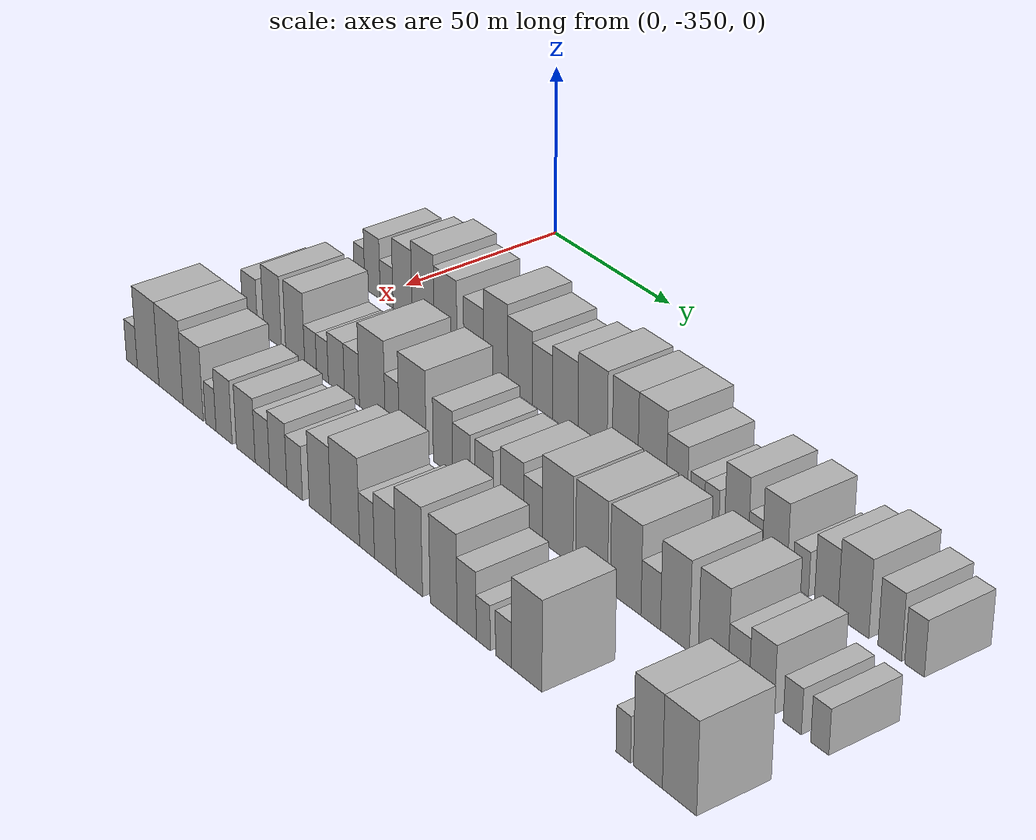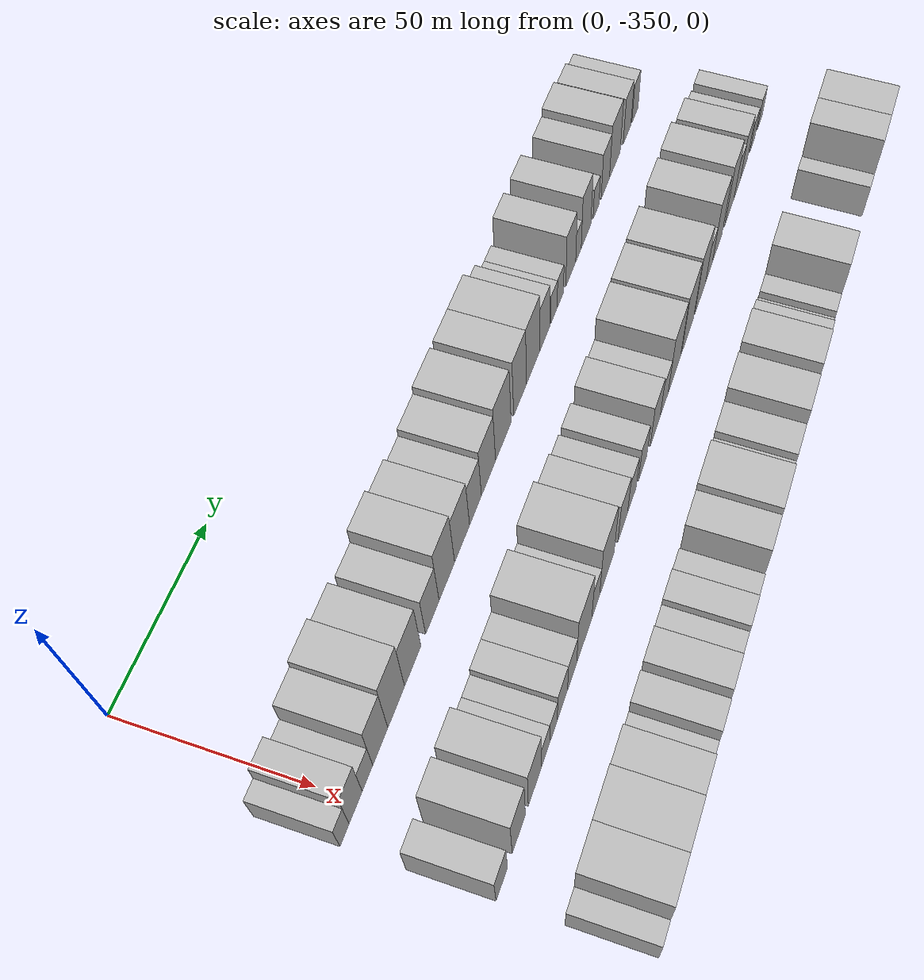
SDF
<sdf version="1.6">
 <world name="default">
  <model name="building_1">
   <static>1</static>
   <pose>50.0000 -357.4880 0 0.000000 0.000000 0.000000</pose>
   <link name="link">
    <pose>0 0 6.00 0 0 0</pose>
    <collision name="collision"><geometry><box><size>20.0000 5.0240 12.0000</size></box></geometry></collision>
    <visual name="visual">
     <cast_shadows>0</cast_shadows>
     <geometry><box><size>20.0000 5.0240 12.0000</size></box></geometry>
     <material>
      <script>
       <uri>model://HANNAS_wall/materials/scripts</uri>
       <uri>model://HANNAS_wall/materials/textures</uri>
       <name>vrc/HANNAS_wall</name>
      </script>
     </material>
    </visual>
   </link>
  </model>
  <model name="building_2">
   <static>1</static>
   <pose>50.0000 -351.3246 0 0.000000 0.000000 0.000000</pose>
   <link name="link">
    <pose>0 0 9.00 0 0 0</pose>
    <collision name="collision"><geometry><box><size>20.0000 7.3028 18.0000</size></box></geometry></collision>
    <visual name="visual">
     <cast_shadows>0</cast_shadows>
     <geometry><box><size>20.0000 7.3028 18.0000</size></box></geometry>
     <material>
      <script>
       <uri>model://HANNAS_wall/materials/scripts</uri>
       <uri>model://HANNAS_wall/materials/textures</uri>
       <name>vrc/HANNAS_wall</name>
      </script>
     </material>
    </visual>
   </link>
  </model>
  <model name="building_3">
   <static>1</static>
   <pose>50.0000 -344.6761 0 0.000000 0.000000 0.000000</pose>
   <link name="link">
    <pose>0 0 6.00 0 0 0</pose>
    <collision name="collision"><geometry><box><size>20.0000 5.9943 12.0000</size></box></geometry></collision>
    <visual name="visual">
     <cast_shadows>0</cast_shadows>
     <geometry><box><size>20.0000 5.9943 12.0000</size></box></geometry>
     <material>
      <script>
       <uri>model://HANNAS_wall/materials/scripts</uri>
       <uri>model://HANNAS_wall/materials/textures</uri>
       <name>vrc/HANNAS_wall</name>
      </script>
     </material>
    </visual>
   </link>
  </model>
  <model name="building_4">
   <static>1</static>
   <pose>50.0000 -337.2562 0 0.000000 0.000000 0.000000</pose>
   <link name="link">
    <pose>0 0 10.50 0 0 0</pose>
    <collision name="collision"><geometry><box><size>20.0000 8.8454 21.0000</size></box></geometry></collision>
    <visual name="visual">
     <cast_shadows>0</cast_shadows>
     <geometry><box><size>20.0000 8.8454 21.0000</size></box></geometry>
     <material>
      <script>
       <uri>model://HANNAS_wall/materials/scripts</uri>
       <uri>model://HANNAS_wall/materials/textures</uri>
       <name>vrc/HANNAS_wall</name>
      </script>
     </material>
    </visual>
   </link>
  </model>
  <model name="building_5">
   <static>1</static>
   <pose>50.0000 -327.7756 0 0.000000 0.000000 0.000000</pose>
   <link name="link">
    <pose>0 0 12.00 0 0 0</pose>
    <collision name="collision"><geometry><box><size>20.0000 10.1157 24.0000</size></box></geometry></collision>
    <visual name="visual">
     <cast_shadows>0</cast_shadows>
     <geometry><box><size>20.0000 10.1157 24.0000</size></box></geometry>
     <material>
      <script>
       <uri>model://HANNAS_wall/materials/scripts</uri>
       <uri>model://HANNAS_wall/materials/textures</uri>
       <name>vrc/HANNAS_wall</name>
      </script>
     </material>
    </visual>
   </link>
  </model>
  <model name="building_6">
   <static>1</static>
   <pose>50.0000 -317.6437 0 0.000000 0.000000 0.000000</pose>
   <link name="link">
    <pose>0 0 10.50 0 0 0</pose>
    <collision name="collision"><geometry><box><size>20.0000 10.1482 21.0000</size></box></geometry></collision>
    <visual name="visual">
     <cast_shadows>0</cast_shadows>
     <geometry><box><size>20.0000 10.1482 21.0000</size></box></geometry>
     <material>
      <script>
       <uri>model://HANNAS_wall/materials/scripts</uri>
       <uri>model://HANNAS_wall/materials/textures</uri>
       <name>vrc/HANNAS_wall</name>
      </script>
     </material>
    </visual>
   </link>
  </model>
  <model name="building_7">
   <static>1</static>
   <pose>50.0000 -305.1972 0 0.000000 0.000000 0.000000</pose>
   <link name="link">
    <pose>0 0 9.00 0 0 0</pose>
    <collision name="collision"><geometry><box><size>20.0000 8.7449 18.0000</size></box></geometry></collision>
    <visual name="visual">
     <cast_shadows>0</cast_shadows>
     <geometry><box><size>20.0000 8.7449 18.0000</size></box></geometry>
     <material>
      <script>
       <uri>model://HANNAS_wall/materials/scripts</uri>
       <uri>model://HANNAS_wall/materials/textures</uri>
       <name>vrc/HANNAS_wall</name>
      </script>
     </material>
    </visual>
   </link>
  </model>
  <model name="building_8">
   <static>1</static>
   <pose>50.0000 -295.6547 0 0.000000 0.000000 0.000000</pose>
   <link name="link">
    <pose>0 0 12.00 0 0 0</pose>
    <collision name="collision"><geometry><box><size>20.0000 10.3399 24.0000</size></box></geometry></collision>
    <visual name="visual">
     <cast_shadows>0</cast_shadows>
     <geometry><box><size>20.0000 10.3399 24.0000</size></box></geometry>
     <material>
      <script>
       <uri>model://HANNAS_wall/materials/scripts</uri>
       <uri>model://HANNAS_wall/materials/textures</uri>
       <name>vrc/HANNAS_wall</name>
      </script>
     </material>
    </visual>
   </link>
  </model>
  <model name="building_9">
   <static>1</static>
   <pose>50.0000 -285.3415 0 0.000000 0.000000 0.000000</pose>
   <link name="link">
    <pose>0 0 10.50 0 0 0</pose>
    <collision name="collision"><geometry><box><size>20.0000 10.2866 21.0000</size></box></geometry></collision>
    <visual name="visual">
     <cast_shadows>0</cast_shadows>
     <geometry><box><size>20.0000 10.2866 21.0000</size></box></geometry>
     <material>
      <script>
       <uri>model://HANNAS_wall/materials/scripts</uri>
       <uri>model://HANNAS_wall/materials/textures</uri>
       <name>vrc/HANNAS_wall</name>
      </script>
     </material>
    </visual>
   </link>
  </model>
  <model name="building_10">
   <static>1</static>
   <pose>50.0000 -275.9957 0 0.000000 0.000000 0.000000</pose>
   <link name="link">
    <pose>0 0 9.00 0 0 0</pose>
    <collision name="collision"><geometry><box><size>20.0000 8.4051 18.0000</size></box></geometry></collision>
    <visual name="visual">
     <cast_shadows>0</cast_shadows>
     <geometry><box><size>20.0000 8.4051 18.0000</size></box></geometry>
     <material>
      <script>
       <uri>model://HANNAS_wall/materials/scripts</uri>
       <uri>model://HANNAS_wall/materials/textures</uri>
       <name>vrc/HANNAS_wall</name>
      </script>
     </material>
    </visual>
   </link>
  </model>
  <model name="building_11">
   <static>1</static>
   <pose>50.0000 -266.6467 0 0.000000 0.000000 0.000000</pose>
   <link name="link">
    <pose>0 0 10.50 0 0 0</pose>
    <collision name="collision"><geometry><box><size>20.0000 10.2929 21.0000</size></box></geometry></collision>
    <visual name="visual">
     <cast_shadows>0</cast_shadows>
     <geometry><box><size>20.0000 10.2929 21.0000</size></box></geometry>
     <material>
      <script>
       <uri>model://HANNAS_wall/materials/scripts</uri>
       <uri>model://HANNAS_wall/materials/textures</uri>
       <name>vrc/HANNAS_wall</name>
      </script>
     </material>
    </visual>
   </link>
  </model>
  <model name="building_12">
   <static>1</static>
   <pose>50.0000 -255.6868 0 0.000000 0.000000 0.000000</pose>
   <link name="link">
    <pose>0 0 12.00 0 0 0</pose>
    <collision name="collision"><geometry><box><size>20.0000 11.6270 24.0000</size></box></geometry></collision>
    <visual name="visual">
     <cast_shadows>0</cast_shadows>
     <geometry><box><size>20.0000 11.6270 24.0000</size></box></geometry>
     <material>
      <script>
       <uri>model://HANNAS_wall/materials/scripts</uri>
       <uri>model://HANNAS_wall/materials/textures</uri>
       <name>vrc/HANNAS_wall</name>
      </script>
     </material>
    </visual>
   </link>
  </model>
  <model name="building_13">
   <static>1</static>
   <pose>50.0000 -242.8772 0 0.000000 0.000000 0.000000</pose>
   <link name="link">
    <pose>0 0 12.00 0 0 0</pose>
    <collision name="collision"><geometry><box><size>20.0000 9.9921 24.0000</size></box></geometry></collision>
    <visual name="visual">
     <cast_shadows>0</cast_shadows>
     <geometry><box><size>20.0000 9.9921 24.0000</size></box></geometry>
     <material>
      <script>
       <uri>model://HANNAS_wall/materials/scripts</uri>
       <uri>model://HANNAS_wall/materials/textures</uri>
       <name>vrc/HANNAS_wall</name>
      </script>
     </material>
    </visual>
   </link>
  </model>
  <model name="building_14">
   <static>1</static>
   <pose>50.0000 -232.4573 0 0.000000 0.000000 0.000000</pose>
   <link name="link">
    <pose>0 0 12.00 0 0 0</pose>
    <collision name="collision"><geometry><box><size>20.0000 10.8477 24.0000</size></box></geometry></collision>
    <visual name="visual">
     <cast_shadows>0</cast_shadows>
     <geometry><box><size>20.0000 10.8477 24.0000</size></box></geometry>
     <material>
      <script>
       <uri>model://HANNAS_wall/materials/scripts</uri>
       <uri>model://HANNAS_wall/materials/textures</uri>
       <name>vrc/HANNAS_wall</name>
      </script>
     </material>
    </visual>
   </link>
  </model>
  <model name="building_15">
   <static>1</static>
   <pose>50.0000 -223.0720 0 0.000000 0.000000 0.000000</pose>
   <link name="link">
    <pose>0 0 9.00 0 0 0</pose>
    <collision name="collision"><geometry><box><size>20.0000 7.9230 18.0000</size></box></geometry></collision>
    <visual name="visual">
     <cast_shadows>0</cast_shadows>
     <geometry><box><size>20.0000 7.9230 18.0000</size></box></geometry>
     <material>
      <script>
       <uri>model://HANNAS_wall/materials/scripts</uri>
       <uri>model://HANNAS_wall/materials/textures</uri>
       <name>vrc/HANNAS_wall</name>
      </script>
     </material>
    </visual>
   </link>
  </model>
  <model name="building_16">
   <static>1</static>
   <pose>50.0000 -215.4568 0 0.000000 0.000000 0.000000</pose>
   <link name="link">
    <pose>0 0 6.00 0 0 0</pose>
    <collision name="collision"><geometry><box><size>20.0000 5.3074 12.0000</size></box></geometry></collision>
    <visual name="visual">
     <cast_shadows>0</cast_shadows>
     <geometry><box><size>20.0000 5.3074 12.0000</size></box></geometry>
     <material>
      <script>
       <uri>model://HANNAS_wall/materials/scripts</uri>
       <uri>model://HANNAS_wall/materials/textures</uri>
       <name>vrc/HANNAS_wall</name>
      </script>
     </material>
    </visual>
   </link>
  </model>
  <model name="building_17">
   <static>1</static>
   <pose>50.0000 -210.1444 0 0.000000 0.000000 0.000000</pose>
   <link name="link">
    <pose>0 0 6.00 0 0 0</pose>
    <collision name="collision"><geometry><box><size>20.0000 5.3173 12.0000</size></box></geometry></collision>
    <visual name="visual">
     <cast_shadows>0</cast_shadows>
     <geometry><box><size>20.0000 5.3173 12.0000</size></box></geometry>
     <material>
      <script>
       <uri>model://HANNAS_wall/materials/scripts</uri>
       <uri>model://HANNAS_wall/materials/textures</uri>
       <name>vrc/HANNAS_wall</name>
      </script>
     </material>
    </visual>
   </link>
  </model>
  <model name="building_18">
   <static>1</static>
   <pose>50.0000 -201.1843 0 0.000000 0.000000 0.000000</pose>
   <link name="link">
    <pose>0 0 10.50 0 0 0</pose>
    <collision name="collision"><geometry><box><size>20.0000 8.6029 21.0000</size></box></geometry></collision>
    <visual name="visual">
     <cast_shadows>0</cast_shadows>
     <geometry><box><size>20.0000 8.6029 21.0000</size></box></geometry>
     <material>
      <script>
       <uri>model://HANNAS_wall/materials/scripts</uri>
       <uri>model://HANNAS_wall/materials/textures</uri>
       <name>vrc/HANNAS_wall</name>
      </script>
     </material>
    </visual>
   </link>
  </model>
  <model name="building_19">
   <static>1</static>
   <pose>50.0000 -194.4160 0 0.000000 0.000000 0.000000</pose>
   <link name="link">
    <pose>0 0 6.00 0 0 0</pose>
    <collision name="collision"><geometry><box><size>20.0000 4.9338 12.0000</size></box></geometry></collision>
    <visual name="visual">
     <cast_shadows>0</cast_shadows>
     <geometry><box><size>20.0000 4.9338 12.0000</size></box></geometry>
     <material>
      <script>
       <uri>model://HANNAS_wall/materials/scripts</uri>
       <uri>model://HANNAS_wall/materials/textures</uri>
       <name>vrc/HANNAS_wall</name>
      </script>
     </material>
    </visual>
   </link>
  </model>
  <model name="building_20">
   <static>1</static>
   <pose>50.0000 -187.5790 0 0.000000 0.000000 0.000000</pose>
   <link name="link">
    <pose>0 0 10.50 0 0 0</pose>
    <collision name="collision"><geometry><box><size>20.0000 8.7402 21.0000</size></box></geometry></collision>
    <visual name="visual">
     <cast_shadows>0</cast_shadows>
     <geometry><box><size>20.0000 8.7402 21.0000</size></box></geometry>
     <material>
      <script>
       <uri>model://HANNAS_wall/materials/scripts</uri>
       <uri>model://HANNAS_wall/materials/textures</uri>
       <name>vrc/HANNAS_wall</name>
      </script>
     </material>
    </visual>
   </link>
  </model>
  <model name="building_21">
   <static>1</static>
   <pose>50.0000 -178.4539 0 0.000000 0.000000 0.000000</pose>
   <link name="link">
    <pose>0 0 6.00 0 0 0</pose>
    <collision name="collision"><geometry><box><size>20.0000 5.5102 12.0000</size></box></geometry></collision>
    <visual name="visual">
     <cast_shadows>0</cast_shadows>
     <geometry><box><size>20.0000 5.5102 12.0000</size></box></geometry>
     <material>
      <script>
       <uri>model://HANNAS_wall/materials/scripts</uri>
       <uri>model://HANNAS_wall/materials/textures</uri>
       <name>vrc/HANNAS_wall</name>
      </script>
     </material>
    </visual>
   </link>
  </model>
  <model name="building_22">
   <static>1</static>
   <pose>50.0000 -169.7559 0 0.000000 0.000000 0.000000</pose>
   <link name="link">
    <pose>0 0 9.00 0 0 0</pose>
    <collision name="collision"><geometry><box><size>20.0000 7.8857 18.0000</size></box></geometry></collision>
    <visual name="visual">
     <cast_shadows>0</cast_shadows>
     <geometry><box><size>20.0000 7.8857 18.0000</size></box></geometry>
     <material>
      <script>
       <uri>model://HANNAS_wall/materials/scripts</uri>
       <uri>model://HANNAS_wall/materials/textures</uri>
       <name>vrc/HANNAS_wall</name>
      </script>
     </material>
    </visual>
   </link>
  </model>
  <model name="building_23">
   <static>1</static>
   <pose>50.0000 -160.6477 0 0.000000 0.000000 0.000000</pose>
   <link name="link">
    <pose>0 0 10.50 0 0 0</pose>
    <collision name="collision"><geometry><box><size>20.0000 10.3306 21.0000</size></box></geometry></collision>
    <visual name="visual">
     <cast_shadows>0</cast_shadows>
     <geometry><box><size>20.0000 10.3306 21.0000</size></box></geometry>
     <material>
      <script>
       <uri>model://HANNAS_wall/materials/scripts</uri>
       <uri>model://HANNAS_wall/materials/textures</uri>
       <name>vrc/HANNAS_wall</name>
      </script>
     </material>
    </visual>
   </link>
  </model>
  <model name="building_24">
   <static>1</static>
   <pose>50.0000 -148.6512 0 0.000000 0.000000 0.000000</pose>
   <link name="link">
    <pose>0 0 9.00 0 0 0</pose>
    <collision name="collision"><geometry><box><size>20.0000 7.6624 18.0000</size></box></geometry></collision>
    <visual name="visual">
     <cast_shadows>0</cast_shadows>
     <geometry><box><size>20.0000 7.6624 18.0000</size></box></geometry>
     <material>
      <script>
       <uri>model://HANNAS_wall/materials/scripts</uri>
       <uri>model://HANNAS_wall/materials/textures</uri>
       <name>vrc/HANNAS_wall</name>
      </script>
     </material>
    </visual>
   </link>
  </model>
  <model name="building_25">
   <static>1</static>
   <pose>50.0000 -140.6782 0 0.000000 0.000000 0.000000</pose>
   <link name="link">
    <pose>0 0 7.50 0 0 0</pose>
    <collision name="collision"><geometry><box><size>20.0000 6.2836 15.0000</size></box></geometry></collision>
    <visual name="visual">
     <cast_shadows>0</cast_shadows>
     <geometry><box><size>20.0000 6.2836 15.0000</size></box></geometry>
     <material>
      <script>
       <uri>model://HANNAS_wall/materials/scripts</uri>
       <uri>model://HANNAS_wall/materials/textures</uri>
       <name>vrc/HANNAS_wall</name>
      </script>
     </material>
    </visual>
   </link>
  </model>
  <model name="building_78">
   <static>1</static>
   <pose>85.0000 -356.4309 0 0.000000 0.000000 0.000000</pose>
   <link name="link">
    <pose>0 0 7.50 0 0 0</pose>
    <collision name="collision"><geometry><box><size>20.0000 7.1383 15.0000</size></box></geometry></collision>
    <visual name="visual">
     <cast_shadows>0</cast_shadows>
     <geometry><box><size>20.0000 7.1383 15.0000</size></box></geometry>
     <material>
      <script>
       <uri>model://HANNAS_wall/materials/scripts</uri>
       <uri>model://HANNAS_wall/materials/textures</uri>
       <name>vrc/HANNAS_wall</name>
      </script>
     </material>
    </visual>
   </link>
  </model>
  <model name="building_79">
   <static>1</static>
   <pose>85.0000 -345.5934 0 0.000000 0.000000 0.000000</pose>
   <link name="link">
    <pose>0 0 10.50 0 0 0</pose>
    <collision name="collision"><geometry><box><size>20.0000 8.5367 21.0000</size></box></geometry></collision>
    <visual name="visual">
     <cast_shadows>0</cast_shadows>
     <geometry><box><size>20.0000 8.5367 21.0000</size></box></geometry>
     <material>
      <script>
       <uri>model://HANNAS_wall/materials/scripts</uri>
       <uri>model://HANNAS_wall/materials/textures</uri>
       <name>vrc/HANNAS_wall</name>
      </script>
     </material>
    </visual>
   </link>
  </model>
  <model name="building_80">
   <static>1</static>
   <pose>85.0000 -334.8430 0 0.000000 0.000000 0.000000</pose>
   <link name="link">
    <pose>0 0 10.50 0 0 0</pose>
    <collision name="collision"><geometry><box><size>20.0000 8.9639 21.0000</size></box></geometry></collision>
    <visual name="visual">
     <cast_shadows>0</cast_shadows>
     <geometry><box><size>20.0000 8.9639 21.0000</size></box></geometry>
     <material>
      <script>
       <uri>model://HANNAS_wall/materials/scripts</uri>
       <uri>model://HANNAS_wall/materials/textures</uri>
       <name>vrc/HANNAS_wall</name>
      </script>
     </material>
    </visual>
   </link>
  </model>
  <model name="building_81">
   <static>1</static>
   <pose>85.0000 -327.5828 0 0.000000 0.000000 0.000000</pose>
   <link name="link">
    <pose>0 0 6.00 0 0 0</pose>
    <collision name="collision"><geometry><box><size>20.0000 5.5565 12.0000</size></box></geometry></collision>
    <visual name="visual">
     <cast_shadows>0</cast_shadows>
     <geometry><box><size>20.0000 5.5565 12.0000</size></box></geometry>
     <material>
      <script>
       <uri>model://HANNAS_wall/materials/scripts</uri>
       <uri>model://HANNAS_wall/materials/textures</uri>
       <name>vrc/HANNAS_wall</name>
      </script>
     </material>
    </visual>
   </link>
  </model>
  <model name="building_82">
   <static>1</static>
   <pose>85.0000 -322.1131 0 0.000000 0.000000 0.000000</pose>
   <link name="link">
    <pose>0 0 6.00 0 0 0</pose>
    <collision name="collision"><geometry><box><size>20.0000 5.3830 12.0000</size></box></geometry></collision>
    <visual name="visual">
     <cast_shadows>0</cast_shadows>
     <geometry><box><size>20.0000 5.3830 12.0000</size></box></geometry>
     <material>
      <script>
       <uri>model://HANNAS_wall/materials/scripts</uri>
       <uri>model://HANNAS_wall/materials/textures</uri>
       <name>vrc/HANNAS_wall</name>
      </script>
     </material>
    </visual>
   </link>
  </model>
  <model name="building_83">
   <static>1</static>
   <pose>85.0000 -315.7393 0 0.000000 0.000000 0.000000</pose>
   <link name="link">
    <pose>0 0 7.50 0 0 0</pose>
    <collision name="collision"><geometry><box><size>20.0000 7.3647 15.0000</size></box></geometry></collision>
    <visual name="visual">
     <cast_shadows>0</cast_shadows>
     <geometry><box><size>20.0000 7.3647 15.0000</size></box></geometry>
     <material>
      <script>
       <uri>model://HANNAS_wall/materials/scripts</uri>
       <uri>model://HANNAS_wall/materials/textures</uri>
       <name>vrc/HANNAS_wall</name>
      </script>
     </material>
    </visual>
   </link>
  </model>
  <model name="building_84">
   <static>1</static>
   <pose>85.0000 -308.7055 0 0.000000 0.000000 0.000000</pose>
   <link name="link">
    <pose>0 0 7.50 0 0 0</pose>
    <collision name="collision"><geometry><box><size>20.0000 6.7028 15.0000</size></box></geometry></collision>
    <visual name="visual">
     <cast_shadows>0</cast_shadows>
     <geometry><box><size>20.0000 6.7028 15.0000</size></box></geometry>
     <material>
      <script>
       <uri>model://HANNAS_wall/materials/scripts</uri>
       <uri>model://HANNAS_wall/materials/textures</uri>
       <name>vrc/HANNAS_wall</name>
      </script>
     </material>
    </visual>
   </link>
  </model>
  <model name="building_85">
   <static>1</static>
   <pose>85.0000 -299.6269 0 0.000000 0.000000 0.000000</pose>
   <link name="link">
    <pose>0 0 12.00 0 0 0</pose>
    <collision name="collision"><geometry><box><size>20.0000 11.4543 24.0000</size></box></geometry></collision>
    <visual name="visual">
     <cast_shadows>0</cast_shadows>
     <geometry><box><size>20.0000 11.4543 24.0000</size></box></geometry>
     <material>
      <script>
       <uri>model://HANNAS_wall/materials/scripts</uri>
       <uri>model://HANNAS_wall/materials/textures</uri>
       <name>vrc/HANNAS_wall</name>
      </script>
     </material>
    </visual>
   </link>
  </model>
  <model name="building_86">
   <static>1</static>
   <pose>85.0000 -290.8579 0 0.000000 0.000000 0.000000</pose>
   <link name="link">
    <pose>0 0 7.50 0 0 0</pose>
    <collision name="collision"><geometry><box><size>20.0000 6.0837 15.0000</size></box></geometry></collision>
    <visual name="visual">
     <cast_shadows>0</cast_shadows>
     <geometry><box><size>20.0000 6.0837 15.0000</size></box></geometry>
     <material>
      <script>
       <uri>model://HANNAS_wall/materials/scripts</uri>
       <uri>model://HANNAS_wall/materials/textures</uri>
       <name>vrc/HANNAS_wall</name>
      </script>
     </material>
    </visual>
   </link>
  </model>
  <model name="building_87">
   <static>1</static>
   <pose>85.0000 -282.0301 0 0.000000 0.000000 0.000000</pose>
   <link name="link">
    <pose>0 0 12.00 0 0 0</pose>
    <collision name="collision"><geometry><box><size>20.0000 11.5718 24.0000</size></box></geometry></collision>
    <visual name="visual">
     <cast_shadows>0</cast_shadows>
     <geometry><box><size>20.0000 11.5718 24.0000</size></box></geometry>
     <material>
      <script>
       <uri>model://HANNAS_wall/materials/scripts</uri>
       <uri>model://HANNAS_wall/materials/textures</uri>
       <name>vrc/HANNAS_wall</name>
      </script>
     </material>
    </visual>
   </link>
  </model>
  <model name="building_88">
   <static>1</static>
   <pose>85.0000 -269.2027 0 0.000000 0.000000 0.000000</pose>
   <link name="link">
    <pose>0 0 9.00 0 0 0</pose>
    <collision name="collision"><geometry><box><size>20.0000 8.0831 18.0000</size></box></geometry></collision>
    <visual name="visual">
     <cast_shadows>0</cast_shadows>
     <geometry><box><size>20.0000 8.0831 18.0000</size></box></geometry>
     <material>
      <script>
       <uri>model://HANNAS_wall/materials/scripts</uri>
       <uri>model://HANNAS_wall/materials/textures</uri>
       <name>vrc/HANNAS_wall</name>
      </script>
     </material>
    </visual>
   </link>
  </model>
  <model name="building_89">
   <static>1</static>
   <pose>85.0000 -261.5074 0 0.000000 0.000000 0.000000</pose>
   <link name="link">
    <pose>0 0 7.50 0 0 0</pose>
    <collision name="collision"><geometry><box><size>20.0000 7.3075 15.0000</size></box></geometry></collision>
    <visual name="visual">
     <cast_shadows>0</cast_shadows>
     <geometry><box><size>20.0000 7.3075 15.0000</size></box></geometry>
     <material>
      <script>
       <uri>model://HANNAS_wall/materials/scripts</uri>
       <uri>model://HANNAS_wall/materials/textures</uri>
       <name>vrc/HANNAS_wall</name>
      </script>
     </material>
    </visual>
   </link>
  </model>
  <model name="building_90">
   <static>1</static>
   <pose>85.0000 -252.2123 0 0.000000 0.000000 0.000000</pose>
   <link name="link">
    <pose>0 0 7.50 0 0 0</pose>
    <collision name="collision"><geometry><box><size>20.0000 7.2826 15.0000</size></box></geometry></collision>
    <visual name="visual">
     <cast_shadows>0</cast_shadows>
     <geometry><box><size>20.0000 7.2826 15.0000</size></box></geometry>
     <material>
      <script>
       <uri>model://HANNAS_wall/materials/scripts</uri>
       <uri>model://HANNAS_wall/materials/textures</uri>
       <name>vrc/HANNAS_wall</name>
      </script>
     </material>
    </visual>
   </link>
  </model>
  <model name="building_91">
   <static>1</static>
   <pose>85.0000 -241.0716 0 0.000000 0.000000 0.000000</pose>
   <link name="link">
    <pose>0 0 9.00 0 0 0</pose>
    <collision name="collision"><geometry><box><size>20.0000 8.9987 18.0000</size></box></geometry></collision>
    <visual name="visual">
     <cast_shadows>0</cast_shadows>
     <geometry><box><size>20.0000 8.9987 18.0000</size></box></geometry>
     <material>
      <script>
       <uri>model://HANNAS_wall/materials/scripts</uri>
       <uri>model://HANNAS_wall/materials/textures</uri>
       <name>vrc/HANNAS_wall</name>
      </script>
     </material>
    </visual>
   </link>
  </model>
  <model name="building_92">
   <static>1</static>
   <pose>85.0000 -232.9044 0 0.000000 0.000000 0.000000</pose>
   <link name="link">
    <pose>0 0 7.50 0 0 0</pose>
    <collision name="collision"><geometry><box><size>20.0000 7.3357 15.0000</size></box></geometry></collision>
    <visual name="visual">
     <cast_shadows>0</cast_shadows>
     <geometry><box><size>20.0000 7.3357 15.0000</size></box></geometry>
     <material>
      <script>
       <uri>model://HANNAS_wall/materials/scripts</uri>
       <uri>model://HANNAS_wall/materials/textures</uri>
       <name>vrc/HANNAS_wall</name>
      </script>
     </material>
    </visual>
   </link>
  </model>
  <model name="building_93">
   <static>1</static>
   <pose>85.0000 -223.3739 0 0.000000 0.000000 0.000000</pose>
   <link name="link">
    <pose>0 0 12.00 0 0 0</pose>
    <collision name="collision"><geometry><box><size>20.0000 11.7253 24.0000</size></box></geometry></collision>
    <visual name="visual">
     <cast_shadows>0</cast_shadows>
     <geometry><box><size>20.0000 11.7253 24.0000</size></box></geometry>
     <material>
      <script>
       <uri>model://HANNAS_wall/materials/scripts</uri>
       <uri>model://HANNAS_wall/materials/textures</uri>
       <name>vrc/HANNAS_wall</name>
      </script>
     </material>
    </visual>
   </link>
  </model>
  <model name="building_94">
   <static>1</static>
   <pose>85.0000 -210.5729 0 0.000000 0.000000 0.000000</pose>
   <link name="link">
    <pose>0 0 12.00 0 0 0</pose>
    <collision name="collision"><geometry><box><size>20.0000 11.8767 24.0000</size></box></geometry></collision>
    <visual name="visual">
     <cast_shadows>0</cast_shadows>
     <geometry><box><size>20.0000 11.8767 24.0000</size></box></geometry>
     <material>
      <script>
       <uri>model://HANNAS_wall/materials/scripts</uri>
       <uri>model://HANNAS_wall/materials/textures</uri>
       <name>vrc/HANNAS_wall</name>
      </script>
     </material>
    </visual>
   </link>
  </model>
  <model name="building_95">
   <static>1</static>
   <pose>85.0000 -198.0438 0 0.000000 0.000000 0.000000</pose>
   <link name="link">
    <pose>0 0 12.00 0 0 0</pose>
    <collision name="collision"><geometry><box><size>20.0000 11.1813 24.0000</size></box></geometry></collision>
    <visual name="visual">
     <cast_shadows>0</cast_shadows>
     <geometry><box><size>20.0000 11.1813 24.0000</size></box></geometry>
     <material>
      <script>
       <uri>model://HANNAS_wall/materials/scripts</uri>
       <uri>model://HANNAS_wall/materials/textures</uri>
       <name>vrc/HANNAS_wall</name>
      </script>
     </material>
    </visual>
   </link>
  </model>
  <model name="building_96">
   <static>1</static>
   <pose>85.0000 -188.9728 0 0.000000 0.000000 0.000000</pose>
   <link name="link">
    <pose>0 0 7.50 0 0 0</pose>
    <collision name="collision"><geometry><box><size>20.0000 6.9607 15.0000</size></box></geometry></collision>
    <visual name="visual">
     <cast_shadows>0</cast_shadows>
     <geometry><box><size>20.0000 6.9607 15.0000</size></box></geometry>
     <material>
      <script>
       <uri>model://HANNAS_wall/materials/scripts</uri>
       <uri>model://HANNAS_wall/materials/textures</uri>
       <name>vrc/HANNAS_wall</name>
      </script>
     </material>
    </visual>
   </link>
  </model>
  <model name="building_97">
   <static>1</static>
   <pose>85.0000 -180.3932 0 0.000000 0.000000 0.000000</pose>
   <link name="link">
    <pose>0 0 12.00 0 0 0</pose>
    <collision name="collision"><geometry><box><size>20.0000 10.1984 24.0000</size></box></geometry></collision>
    <visual name="visual">
     <cast_shadows>0</cast_shadows>
     <geometry><box><size>20.0000 10.1984 24.0000</size></box></geometry>
     <material>
      <script>
       <uri>model://HANNAS_wall/materials/scripts</uri>
       <uri>model://HANNAS_wall/materials/textures</uri>
       <name>vrc/HANNAS_wall</name>
      </script>
     </material>
    </visual>
   </link>
  </model>
  <model name="building_98">
   <static>1</static>
   <pose>85.0000 -167.2130 0 0.000000 0.000000 0.000000</pose>
   <link name="link">
    <pose>0 0 12.00 0 0 0</pose>
    <collision name="collision"><geometry><box><size>20.0000 10.1621 24.0000</size></box></geometry></collision>
    <visual name="visual">
     <cast_shadows>0</cast_shadows>
     <geometry><box><size>20.0000 10.1621 24.0000</size></box></geometry>
     <material>
      <script>
       <uri>model://HANNAS_wall/materials/scripts</uri>
       <uri>model://HANNAS_wall/materials/textures</uri>
       <name>vrc/HANNAS_wall</name>
      </script>
     </material>
    </visual>
   </link>
  </model>
  <model name="building_99">
   <static>1</static>
   <pose>85.0000 -158.5854 0 0.000000 0.000000 0.000000</pose>
   <link name="link">
    <pose>0 0 7.50 0 0 0</pose>
    <collision name="collision"><geometry><box><size>20.0000 7.0930 15.0000</size></box></geometry></collision>
    <visual name="visual">
     <cast_shadows>0</cast_shadows>
     <geometry><box><size>20.0000 7.0930 15.0000</size></box></geometry>
     <material>
      <script>
       <uri>model://HANNAS_wall/materials/scripts</uri>
       <uri>model://HANNAS_wall/materials/textures</uri>
       <name>vrc/HANNAS_wall</name>
      </script>
     </material>
    </visual>
   </link>
  </model>
  <model name="building_100">
   <static>1</static>
   <pose>85.0000 -150.8877 0 0.000000 0.000000 0.000000</pose>
   <link name="link">
    <pose>0 0 9.00 0 0 0</pose>
    <collision name="collision"><geometry><box><size>20.0000 8.3025 18.0000</size></box></geometry></collision>
    <visual name="visual">
     <cast_shadows>0</cast_shadows>
     <geometry><box><size>20.0000 8.3025 18.0000</size></box></geometry>
     <material>
      <script>
       <uri>model://HANNAS_wall/materials/scripts</uri>
       <uri>model://HANNAS_wall/materials/textures</uri>
       <name>vrc/HANNAS_wall</name>
      </script>
     </material>
    </visual>
   </link>
  </model>
  <model name="building_101">
   <static>1</static>
   <pose>85.0000 -140.7984 0 0.000000 0.000000 0.000000</pose>
   <link name="link">
    <pose>0 0 6.00 0 0 0</pose>
    <collision name="collision"><geometry><box><size>20.0000 5.8761 12.0000</size></box></geometry></collision>
    <visual name="visual">
     <cast_shadows>0</cast_shadows>
     <geometry><box><size>20.0000 5.8761 12.0000</size></box></geometry>
     <material>
      <script>
       <uri>model://HANNAS_wall/materials/scripts</uri>
       <uri>model://HANNAS_wall/materials/textures</uri>
       <name>vrc/HANNAS_wall</name>
      </script>
     </material>
    </visual>
   </link>
  </model>
  <model name="building_102">
   <static>1</static>
   <pose>85.0000 -131.9815 0 0.000000 0.000000 0.000000</pose>
   <link name="link">
    <pose>0 0 6.00 0 0 0</pose>
    <collision name="collision"><geometry><box><size>20.0000 5.7577 12.0000</size></box></geometry></collision>
    <visual name="visual">
     <cast_shadows>0</cast_shadows>
     <geometry><box><size>20.0000 5.7577 12.0000</size></box></geometry>
     <material>
      <script>
       <uri>model://HANNAS_wall/materials/scripts</uri>
       <uri>model://HANNAS_wall/materials/textures</uri>
       <name>vrc/HANNAS_wall</name>
      </script>
     </material>
    </visual>
   </link>
  </model>
  <model name="building_149">
   <static>1</static>
   <pose>120.0000 -357.2813 0 0.000000 0.000000 0.000000</pose>
   <link name="link">
    <pose>0 0 6.00 0 0 0</pose>
    <collision name="collision"><geometry><box><size>20.0000 5.4375 12.0000</size></box></geometry></collision>
    <visual name="visual">
     <cast_shadows>0</cast_shadows>
     <geometry><box><size>20.0000 5.4375 12.0000</size></box></geometry>
     <material>
      <script>
       <uri>model://HANNAS_wall/materials/scripts</uri>
       <uri>model://HANNAS_wall/materials/textures</uri>
       <name>vrc/HANNAS_wall</name>
      </script>
     </material>
    </visual>
   </link>
  </model>
  <model name="building_150">
   <static>1</static>
   <pose>120.0000 -349.1830 0 0.000000 0.000000 0.000000</pose>
   <link name="link">
    <pose>0 0 12.00 0 0 0</pose>
    <collision name="collision"><geometry><box><size>20.0000 10.7591 24.0000</size></box></geometry></collision>
    <visual name="visual">
     <cast_shadows>0</cast_shadows>
     <geometry><box><size>20.0000 10.7591 24.0000</size></box></geometry>
     <material>
      <script>
       <uri>model://HANNAS_wall/materials/scripts</uri>
       <uri>model://HANNAS_wall/materials/textures</uri>
       <name>vrc/HANNAS_wall</name>
      </script>
     </material>
    </visual>
   </link>
  </model>
  <model name="building_151">
   <static>1</static>
   <pose>120.0000 -337.9560 0 0.000000 0.000000 0.000000</pose>
   <link name="link">
    <pose>0 0 12.00 0 0 0</pose>
    <collision name="collision"><geometry><box><size>20.0000 11.6948 24.0000</size></box></geometry></collision>
    <visual name="visual">
     <cast_shadows>0</cast_shadows>
     <geometry><box><size>20.0000 11.6948 24.0000</size></box></geometry>
     <material>
      <script>
       <uri>model://HANNAS_wall/materials/scripts</uri>
       <uri>model://HANNAS_wall/materials/textures</uri>
       <name>vrc/HANNAS_wall</name>
      </script>
     </material>
    </visual>
   </link>
  </model>
  <model name="building_152">
   <static>1</static>
   <pose>120.0000 -327.2592 0 0.000000 0.000000 0.000000</pose>
   <link name="link">
    <pose>0 0 10.50 0 0 0</pose>
    <collision name="collision"><geometry><box><size>20.0000 9.6988 21.0000</size></box></geometry></collision>
    <visual name="visual">
     <cast_shadows>0</cast_shadows>
     <geometry><box><size>20.0000 9.6988 21.0000</size></box></geometry>
     <material>
      <script>
       <uri>model://HANNAS_wall/materials/scripts</uri>
       <uri>model://HANNAS_wall/materials/textures</uri>
       <name>vrc/HANNAS_wall</name>
      </script>
     </material>
    </visual>
   </link>
  </model>
  <model name="building_153">
   <static>1</static>
   <pose>120.0000 -318.9145 0 0.000000 0.000000 0.000000</pose>
   <link name="link">
    <pose>0 0 6.00 0 0 0</pose>
    <collision name="collision"><geometry><box><size>20.0000 4.9906 12.0000</size></box></geometry></collision>
    <visual name="visual">
     <cast_shadows>0</cast_shadows>
     <geometry><box><size>20.0000 4.9906 12.0000</size></box></geometry>
     <material>
      <script>
       <uri>model://HANNAS_wall/materials/scripts</uri>
       <uri>model://HANNAS_wall/materials/textures</uri>
       <name>vrc/HANNAS_wall</name>
      </script>
     </material>
    </visual>
   </link>
  </model>
  <model name="building_154">
   <static>1</static>
   <pose>120.0000 -312.6756 0 0.000000 0.000000 0.000000</pose>
   <link name="link">
    <pose>0 0 9.00 0 0 0</pose>
    <collision name="collision"><geometry><box><size>20.0000 7.4872 18.0000</size></box></geometry></collision>
    <visual name="visual">
     <cast_shadows>0</cast_shadows>
     <geometry><box><size>20.0000 7.4872 18.0000</size></box></geometry>
     <material>
      <script>
       <uri>model://HANNAS_wall/materials/scripts</uri>
       <uri>model://HANNAS_wall/materials/textures</uri>
       <name>vrc/HANNAS_wall</name>
      </script>
     </material>
    </visual>
   </link>
  </model>
  <model name="building_155">
   <static>1</static>
   <pose>120.0000 -302.6644 0 0.000000 0.000000 0.000000</pose>
   <link name="link">
    <pose>0 0 9.00 0 0 0</pose>
    <collision name="collision"><geometry><box><size>20.0000 8.5351 18.0000</size></box></geometry></collision>
    <visual name="visual">
     <cast_shadows>0</cast_shadows>
     <geometry><box><size>20.0000 8.5351 18.0000</size></box></geometry>
     <material>
      <script>
       <uri>model://HANNAS_wall/materials/scripts</uri>
       <uri>model://HANNAS_wall/materials/textures</uri>
       <name>vrc/HANNAS_wall</name>
      </script>
     </material>
    </visual>
   </link>
  </model>
  <model name="building_156">
   <static>1</static>
   <pose>120.0000 -295.1135 0 0.000000 0.000000 0.000000</pose>
   <link name="link">
    <pose>0 0 7.50 0 0 0</pose>
    <collision name="collision"><geometry><box><size>20.0000 6.5667 15.0000</size></box></geometry></collision>
    <visual name="visual">
     <cast_shadows>0</cast_shadows>
     <geometry><box><size>20.0000 6.5667 15.0000</size></box></geometry>
     <material>
      <script>
       <uri>model://HANNAS_wall/materials/scripts</uri>
       <uri>model://HANNAS_wall/materials/textures</uri>
       <name>vrc/HANNAS_wall</name>
      </script>
     </material>
    </visual>
   </link>
  </model>
  <model name="building_157">
   <static>1</static>
   <pose>120.0000 -288.0142 0 0.000000 0.000000 0.000000</pose>
   <link name="link">
    <pose>0 0 9.00 0 0 0</pose>
    <collision name="collision"><geometry><box><size>20.0000 7.6319 18.0000</size></box></geometry></collision>
    <visual name="visual">
     <cast_shadows>0</cast_shadows>
     <geometry><box><size>20.0000 7.6319 18.0000</size></box></geometry>
     <material>
      <script>
       <uri>model://HANNAS_wall/materials/scripts</uri>
       <uri>model://HANNAS_wall/materials/textures</uri>
       <name>vrc/HANNAS_wall</name>
      </script>
     </material>
    </visual>
   </link>
  </model>
  <model name="building_158">
   <static>1</static>
   <pose>120.0000 -280.7984 0 0.000000 0.000000 0.000000</pose>
   <link name="link">
    <pose>0 0 7.50 0 0 0</pose>
    <collision name="collision"><geometry><box><size>20.0000 6.7997 15.0000</size></box></geometry></collision>
    <visual name="visual">
     <cast_shadows>0</cast_shadows>
     <geometry><box><size>20.0000 6.7997 15.0000</size></box></geometry>
     <material>
      <script>
       <uri>model://HANNAS_wall/materials/scripts</uri>
       <uri>model://HANNAS_wall/materials/textures</uri>
       <name>vrc/HANNAS_wall</name>
      </script>
     </material>
    </visual>
   </link>
  </model>
  <model name="building_159">
   <static>1</static>
   <pose>120.0000 -269.7191 0 0.000000 0.000000 0.000000</pose>
   <link name="link">
    <pose>0 0 10.50 0 0 0</pose>
    <collision name="collision"><geometry><box><size>20.0000 9.3589 21.0000</size></box></geometry></collision>
    <visual name="visual">
     <cast_shadows>0</cast_shadows>
     <geometry><box><size>20.0000 9.3589 21.0000</size></box></geometry>
     <material>
      <script>
       <uri>model://HANNAS_wall/materials/scripts</uri>
       <uri>model://HANNAS_wall/materials/textures</uri>
       <name>vrc/HANNAS_wall</name>
      </script>
     </material>
    </visual>
   </link>
  </model>
  <model name="building_160">
   <static>1</static>
   <pose>120.0000 -259.0715 0 0.000000 0.000000 0.000000</pose>
   <link name="link">
    <pose>0 0 12.00 0 0 0</pose>
    <collision name="collision"><geometry><box><size>20.0000 11.9363 24.0000</size></box></geometry></collision>
    <visual name="visual">
     <cast_shadows>0</cast_shadows>
     <geometry><box><size>20.0000 11.9363 24.0000</size></box></geometry>
     <material>
      <script>
       <uri>model://HANNAS_wall/materials/scripts</uri>
       <uri>model://HANNAS_wall/materials/textures</uri>
       <name>vrc/HANNAS_wall</name>
      </script>
     </material>
    </visual>
   </link>
  </model>
  <model name="building_161">
   <static>1</static>
   <pose>120.0000 -250.0370 0 0.000000 0.000000 0.000000</pose>
   <link name="link">
    <pose>0 0 7.50 0 0 0</pose>
    <collision name="collision"><geometry><box><size>20.0000 6.1327 15.0000</size></box></geometry></collision>
    <visual name="visual">
     <cast_shadows>0</cast_shadows>
     <geometry><box><size>20.0000 6.1327 15.0000</size></box></geometry>
     <material>
      <script>
       <uri>model://HANNAS_wall/materials/scripts</uri>
       <uri>model://HANNAS_wall/materials/textures</uri>
       <name>vrc/HANNAS_wall</name>
      </script>
     </material>
    </visual>
   </link>
  </model>
  <model name="building_162">
   <static>1</static>
   <pose>120.0000 -242.5953 0 0.000000 0.000000 0.000000</pose>
   <link name="link">
    <pose>0 0 9.00 0 0 0</pose>
    <collision name="collision"><geometry><box><size>20.0000 8.7507 18.0000</size></box></geometry></collision>
    <visual name="visual">
     <cast_shadows>0</cast_shadows>
     <geometry><box><size>20.0000 8.7507 18.0000</size></box></geometry>
     <material>
      <script>
       <uri>model://HANNAS_wall/materials/scripts</uri>
       <uri>model://HANNAS_wall/materials/textures</uri>
       <name>vrc/HANNAS_wall</name>
      </script>
     </material>
    </visual>
   </link>
  </model>
  <model name="building_163">
   <static>1</static>
   <pose>120.0000 -232.9221 0 0.000000 0.000000 0.000000</pose>
   <link name="link">
    <pose>0 0 12.00 0 0 0</pose>
    <collision name="collision"><geometry><box><size>20.0000 10.5957 24.0000</size></box></geometry></collision>
    <visual name="visual">
     <cast_shadows>0</cast_shadows>
     <geometry><box><size>20.0000 10.5957 24.0000</size></box></geometry>
     <material>
      <script>
       <uri>model://HANNAS_wall/materials/scripts</uri>
       <uri>model://HANNAS_wall/materials/textures</uri>
       <name>vrc/HANNAS_wall</name>
      </script>
     </material>
    </visual>
   </link>
  </model>
  <model name="building_164">
   <static>1</static>
   <pose>120.0000 -219.3989 0 0.000000 0.000000 0.000000</pose>
   <link name="link">
    <pose>0 0 12.00 0 0 0</pose>
    <collision name="collision"><geometry><box><size>20.0000 10.4508 24.0000</size></box></geometry></collision>
    <visual name="visual">
     <cast_shadows>0</cast_shadows>
     <geometry><box><size>20.0000 10.4508 24.0000</size></box></geometry>
     <material>
      <script>
       <uri>model://HANNAS_wall/materials/scripts</uri>
       <uri>model://HANNAS_wall/materials/textures</uri>
       <name>vrc/HANNAS_wall</name>
      </script>
     </material>
    </visual>
   </link>
  </model>
  <model name="building_165">
   <static>1</static>
   <pose>120.0000 -210.5148 0 0.000000 0.000000 0.000000</pose>
   <link name="link">
    <pose>0 0 9.00 0 0 0</pose>
    <collision name="collision"><geometry><box><size>20.0000 7.3174 18.0000</size></box></geometry></collision>
    <visual name="visual">
     <cast_shadows>0</cast_shadows>
     <geometry><box><size>20.0000 7.3174 18.0000</size></box></geometry>
     <material>
      <script>
       <uri>model://HANNAS_wall/materials/scripts</uri>
       <uri>model://HANNAS_wall/materials/textures</uri>
       <name>vrc/HANNAS_wall</name>
      </script>
     </material>
    </visual>
   </link>
  </model>
  <model name="building_166">
   <static>1</static>
   <pose>120.0000 -204.2352 0 0.000000 0.000000 0.000000</pose>
   <link name="link">
    <pose>0 0 6.00 0 0 0</pose>
    <collision name="collision"><geometry><box><size>20.0000 5.2417 12.0000</size></box></geometry></collision>
    <visual name="visual">
     <cast_shadows>0</cast_shadows>
     <geometry><box><size>20.0000 5.2417 12.0000</size></box></geometry>
     <material>
      <script>
       <uri>model://HANNAS_wall/materials/scripts</uri>
       <uri>model://HANNAS_wall/materials/textures</uri>
       <name>vrc/HANNAS_wall</name>
      </script>
     </material>
    </visual>
   </link>
  </model>
  <model name="building_167">
   <static>1</static>
   <pose>120.0000 -196.6678 0 0.000000 0.000000 0.000000</pose>
   <link name="link">
    <pose>0 0 6.00 0 0 0</pose>
    <collision name="collision"><geometry><box><size>20.0000 5.8931 12.0000</size></box></geometry></collision>
    <visual name="visual">
     <cast_shadows>0</cast_shadows>
     <geometry><box><size>20.0000 5.8931 12.0000</size></box></geometry>
     <material>
      <script>
       <uri>model://HANNAS_wall/materials/scripts</uri>
       <uri>model://HANNAS_wall/materials/textures</uri>
       <name>vrc/HANNAS_wall</name>
      </script>
     </material>
    </visual>
   </link>
  </model>
  <model name="building_168">
   <static>1</static>
   <pose>120.0000 -188.1610 0 0.000000 0.000000 0.000000</pose>
   <link name="link">
    <pose>0 0 12.00 0 0 0</pose>
    <collision name="collision"><geometry><box><size>20.0000 11.1206 24.0000</size></box></geometry></collision>
    <visual name="visual">
     <cast_shadows>0</cast_shadows>
     <geometry><box><size>20.0000 11.1206 24.0000</size></box></geometry>
     <material>
      <script>
       <uri>model://HANNAS_wall/materials/scripts</uri>
       <uri>model://HANNAS_wall/materials/textures</uri>
       <name>vrc/HANNAS_wall</name>
      </script>
     </material>
    </visual>
   </link>
  </model>
  <model name="building_169">
   <static>1</static>
   <pose>120.0000 -154.2214 0 0.000000 0.000000 0.000000</pose>
   <link name="link">
    <pose>0 0 6.00 0 0 0</pose>
    <collision name="collision"><geometry><box><size>20.0000 4.9195 12.0000</size></box></geometry></collision>
    <visual name="visual">
     <cast_shadows>0</cast_shadows>
     <geometry><box><size>20.0000 4.9195 12.0000</size></box></geometry>
     <material>
      <script>
       <uri>model://HANNAS_wall/materials/scripts</uri>
       <uri>model://HANNAS_wall/materials/textures</uri>
       <name>vrc/HANNAS_wall</name>
      </script>
     </material>
    </visual>
   </link>
  </model>
  <model name="building_170">
   <static>1</static>
   <pose>120.0000 -145.9594 0 0.000000 0.000000 0.000000</pose>
   <link name="link">
    <pose>0 0 12.00 0 0 0</pose>
    <collision name="collision"><geometry><box><size>20.0000 9.6044 24.0000</size></box></geometry></collision>
    <visual name="visual">
     <cast_shadows>0</cast_shadows>
     <geometry><box><size>20.0000 9.6044 24.0000</size></box></geometry>
     <material>
      <script>
       <uri>model://HANNAS_wall/materials/scripts</uri>
       <uri>model://HANNAS_wall/materials/textures</uri>
       <name>vrc/HANNAS_wall</name>
      </script>
     </material>
    </visual>
   </link>
  </model>
  <model name="building_171">
   <static>1</static>
   <pose>120.0000 -135.5880 0 0.000000 0.000000 0.000000</pose>
   <link name="link">
    <pose>0 0 12.00 0 0 0</pose>
    <collision name="collision"><geometry><box><size>20.0000 11.1384 24.0000</size></box></geometry></collision>
    <visual name="visual">
     <cast_shadows>0</cast_shadows>
     <geometry><box><size>20.0000 11.1384 24.0000</size></box></geometry>
     <material>
      <script>
       <uri>model://HANNAS_wall/materials/scripts</uri>
       <uri>model://HANNAS_wall/materials/textures</uri>
       <name>vrc/HANNAS_wall</name>
      </script>
     </material>
    </visual>
   </link>
  </model>
 </world>
</sdf>
